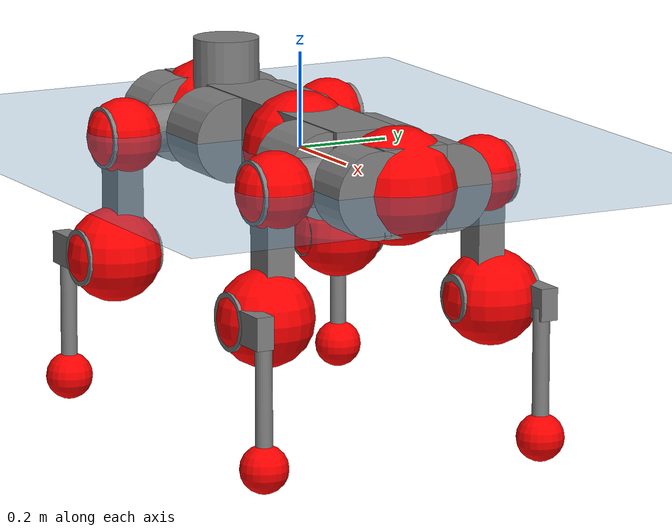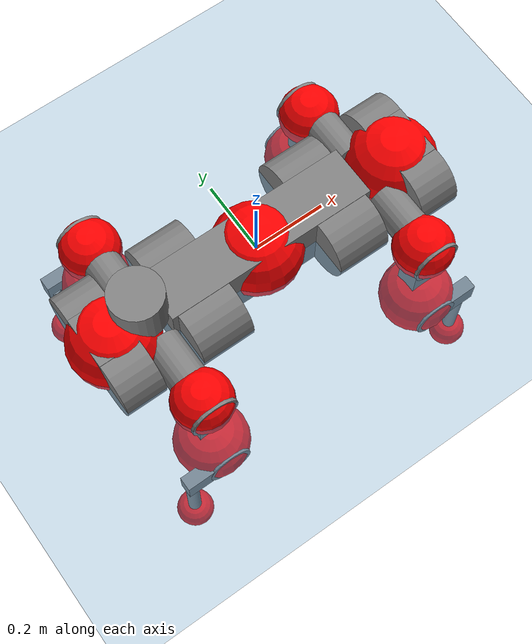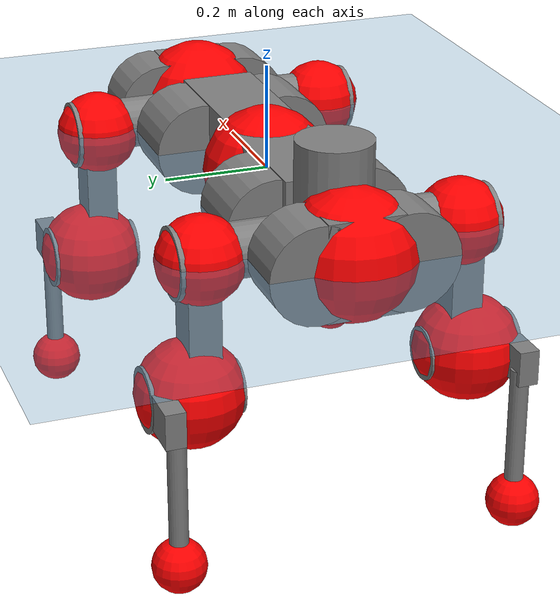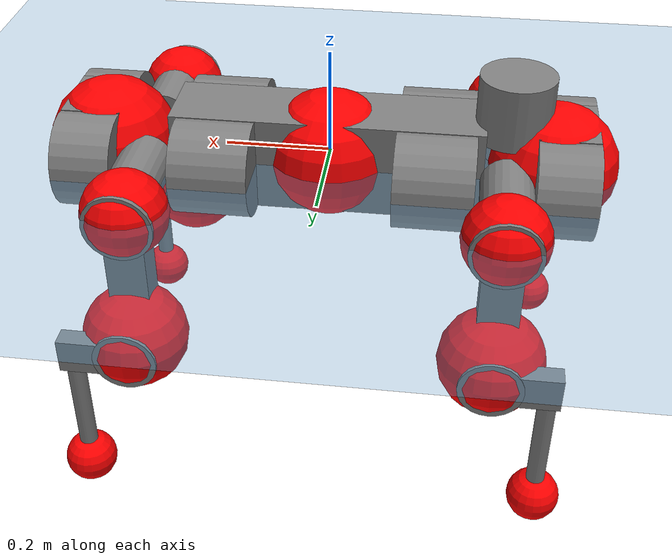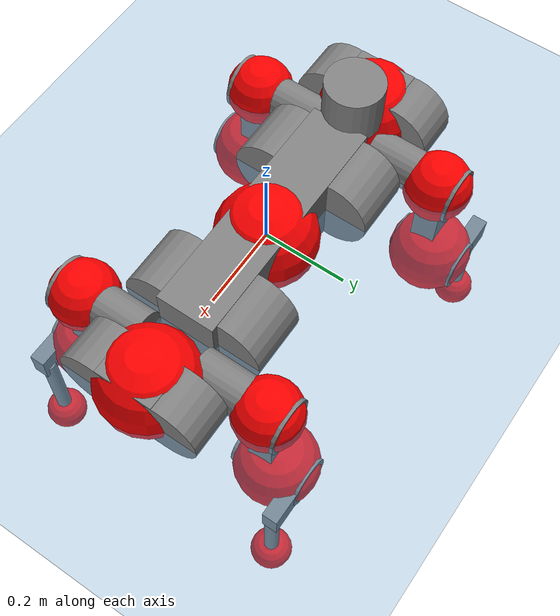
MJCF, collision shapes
<mujoco model="anymal_c">
  <compiler angle="radian" assetdir="assets" balanceinertia="true" inertiafromgeom="false"/>

  <option timestep="0.005" density="1.2" viscosity="2e-05"/>

  <size nkey="1"/>

  <visual>
    <quality shadowsize="8192"/>
    <map shadowclip="0.5"/>
  </visual>

  <default>
    <default class="/">
      <material specular="0" shininess="0.25"/>
      <geom contype="0" conaffinity="0" group="1" solref="-1000 -80"/>
      <site size="0.01 0.005 0.005" group="5"/>
      <general forcelimited="true" forcerange="-80 80" biastype="affine" gainprm="80" biasprm="0 -80 -2"/>
      <default class="anymal_c">
        <joint armature="0.01" damping="0.01" frictionloss="0.1"/>
        <default class="visual">
          <geom type="mesh" group="2"/>
          <default class="visual_zflip"/>
        </default>
        <default class="collision">
          <geom type="cylinder" group="3"/>
          <default class="foot">
            <geom size="0.03 0 0" type="sphere" condim="6" priority="1" friction="0.8 0.02 0.01" solimp="0.015 1 0.03"/>
          </default>
        </default>
      </default>
      <default class="reward_collision_sphere">
        <geom group="5" rgba="1 0 0 1"/>
      </default>
    </default>
  </default>

  <asset>
    <texture type="skybox" colorspace="auto" name="//unnamed_texture_0" builtin="gradient" rgb1="0.95 0.95 0.95" rgb2="0.95 0.95 0.95" width="100" height="600"/>
    <texture type="2d" colorspace="auto" name="texplane" builtin="checker" rgb1="0.345 0.575 0.748" rgb2="0.345 0.575 0.748" markrgb="1 1 1" width="512" height="512"/>
    <texture type="2d" colorspace="linear" name="base" file="base.png"/>
    <texture type="2d" colorspace="linear" name="top_shell" file="top_shell.png"/>
    <texture type="2d" colorspace="linear" name="bottom_shell" file="bottom_shell.png"/>
    <texture type="2d" colorspace="linear" name="remote" file="remote.png"/>
    <texture type="2d" colorspace="linear" name="hatch" file="hatch.png"/>
    <texture type="2d" colorspace="linear" name="handle" file="handle.png"/>
    <texture type="2d" colorspace="linear" name="face" file="face.png"/>
    <texture type="2d" colorspace="linear" name="battery" file="battery.png"/>
    <texture type="2d" colorspace="linear" name="lidar_cage" file="lidar_cage.png"/>
    <texture type="2d" colorspace="linear" name="depth_camera" file="depth_camera.png"/>
    <texture type="2d" colorspace="linear" name="wide_angle_camera" file="wide_angle_camera.png"/>
    <texture type="2d" colorspace="linear" name="lidar" file="lidar.png"/>
    <texture type="2d" colorspace="linear" name="drive" file="drive.png"/>
    <texture type="2d" colorspace="linear" name="hip_l" file="hip_l.png"/>
    <texture type="2d" colorspace="linear" name="shank_l" file="shank_l.png"/>
    <texture type="2d" colorspace="linear" name="foot" file="foot.png"/>
    <texture type="2d" colorspace="linear" name="thigh" file="thigh.png"/>
    <texture type="2d" colorspace="linear" name="shank_r" file="shank_r.png"/>
    <texture type="2d" colorspace="linear" name="hip_r" file="hip_r.png"/>
    <material name="MatPlane" class="/" texture="texplane" texuniform="true" texrepeat="2 2" specular="0.9" shininess="0.5"/>
    <material name="black_plastic" class="/" rgba="0.007 0.007 0.007 1"/>
    <material name="green" class="/" rgba="0.052 0.178 0.033 1"/>
    <material name="red" class="/" rgba="0.178 0.006 0.005 1"/>
    <material name="yellow" class="/" rgba="0.178 0.119 0.006 1"/>
    <material name="lwl" class="/" rgba="0.8 0.8 0.8 1"/>
    <material name="base" class="/" texture="base"/>
    <material name="top_shell" class="/" texture="top_shell"/>
    <material name="bottom_shell" class="/" texture="bottom_shell"/>
    <material name="hip_l" class="/" texture="hip_l"/>
    <material name="thigh" class="/" texture="thigh"/>
    <material name="shank_l" class="/" texture="shank_l"/>
    <material name="foot" class="/" texture="foot"/>
    <material name="hip_r" class="/" texture="hip_r"/>
    <material name="shank" class="/" texture="shank_r"/>
    <material name="hatch" class="/" texture="hatch"/>
    <material name="remote" class="/" texture="remote"/>
    <material name="handle" class="/" texture="handle"/>
    <material name="face" class="/" texture="face"/>
    <material name="depth_camera" class="/" texture="depth_camera"/>
    <material name="wide_angle_camera" class="/" texture="wide_angle_camera"/>
    <material name="battery" class="/" texture="battery"/>
    <material name="lidar_cage" class="/" texture="lidar_cage"/>
    <material name="lidar" class="/" texture="lidar"/>
    <material name="drive" class="/" texture="drive"/>
    <mesh name="base_0" class="/" file="base_0.obj"/>
    <mesh name="base_1" class="/" file="base_1.obj"/>
    <mesh name="base_2" class="/" file="base_2.obj"/>
    <mesh name="base_3" class="/" file="base_3.obj"/>
    <mesh name="base_4" class="/" file="base_4.obj"/>
    <mesh name="base_5" class="/" file="base_5.obj"/>
    <mesh name="top_shell" class="/" file="top_shell.obj"/>
    <mesh name="bottom_shell" class="/" file="bottom_shell.obj"/>
    <mesh name="remote" class="/" file="remote.obj"/>
    <mesh name="handle" class="/" file="handle.obj"/>
    <mesh name="face" class="/" file="face.obj"/>
    <mesh name="wide_angle_camera" class="/" file="wide_angle_camera.obj"/>
    <mesh name="depth_camera" class="/" file="depth_camera.obj"/>
    <mesh name="battery" class="/" file="battery.obj"/>
    <mesh name="lidar_cage" class="/" file="lidar_cage.obj"/>
    <mesh name="lidar" class="/" file="lidar.obj"/>
    <mesh name="drive" class="/" file="drive.obj"/>
    <mesh name="hip_l" class="/" file="hip_l.obj"/>
    <mesh name="thigh" class="/" file="thigh.obj"/>
    <mesh name="shank_l" class="/" file="shank_l.obj"/>
    <mesh name="foot" class="/" file="foot.obj"/>
    <mesh name="hip_r" class="/" file="hip_r.obj"/>
    <mesh name="hatch" class="/" file="hatch.obj"/>
    <mesh name="shank_r" class="/" file="shank_r.obj"/>
  </asset>

  <worldbody>
    <geom name="floor" class="/" size="100 100 0.125" type="plane" group="0" material="MatPlane"/>
    <light name="toplight_shadow" class="/" pos="0 0 5" dir="0.0990148 0.0990148 -0.990148" type="directional" ambient="0.04 0.04 0.04" diffuse="0.55 0.55 0.55" specular="0.12 0.12 0.12"/>
    <light name="toplight_fill" class="/" pos="0 0 5" dir="0.0990148 0.0990148 -0.990148" type="directional" castshadow="false" ambient="0.04 0.04 0.04" diffuse="0.3 0.3 0.3" specular="0.08 0.08 0.08"/>
    <body name="trunk" childclass="anymal_c" pos="0.000426631 0.000275138 -0.0023627" quat="1 -0.000126648 -8.57521e-05 5.22404e-05">
      <inertial pos="0.00148454 0.00457384 0.0420757" quat="0.498623 0.502439 0.500707 0.498219" mass="20.4244" diaginertia="0.513125 1.57546 0.126031"/>
      <joint name="//unnamed_joint_0" type="free" armature="0" damping="0" frictionloss="0"/>
      <geom name="//unnamed_geom_1" class="visual" material="green" mesh="base_0"/>
      <geom name="//unnamed_geom_2" class="visual" material="yellow" mesh="base_1"/>
      <geom name="//unnamed_geom_3" class="visual" material="red" mesh="base_2"/>
      <geom name="//unnamed_geom_4" class="visual" material="black_plastic" mesh="base_3"/>
      <geom name="//unnamed_geom_5" class="visual" material="lwl" mesh="base_4"/>
      <geom name="//unnamed_geom_6" class="visual" material="base" mesh="base_5"/>
      <geom name="trunk_1" class="collision" size="0.292194 0.0705296 0.0906809" type="box"/>
      <geom name="trunk_2" class="collision" size="0.0906809 0.0730485" pos="0.203556 0.083694 0" quat="0.707107 0 0.707107 0"/>
      <geom name="trunk_3" class="collision" size="0.0906809 0.0730485" pos="-0.203556 0.083694 0" quat="0.707107 0 0.707107 0"/>
      <geom name="trunk_4" class="collision" size="0.0906809 0.0730485" pos="0.203556 -0.083694 0" quat="0.707107 0 0.707107 0"/>
      <geom name="trunk_5" class="collision" size="0.0906809 0.0730485" pos="-0.203556 -0.083694 0" quat="0.707107 0 0.707107 0"/>
      <geom name="//unnamed_geom_12" class="visual" material="top_shell" mesh="top_shell"/>
      <geom name="//unnamed_geom_13" class="visual" material="bottom_shell" mesh="bottom_shell"/>
      <geom name="//unnamed_geom_14" class="visual" material="remote" mesh="remote"/>
      <geom name="//unnamed_geom_15" class="visual" material="handle" mesh="handle"/>
      <geom name="//unnamed_geom_16" class="visual" pos="0.387927 0 0" quat="1 0 0 0" material="face" mesh="face"/>
      <geom name="trunk_6" class="collision" size="0.0554161 0.0705296 0.0906809" pos="0.439401 0 0" type="box"/>
      <geom name="//unnamed_geom_18" class="collision" size="0.0906809 0.0554161" pos="0.439401 0.083694 0" quat="0.707107 0 0.707107 0"/>
      <geom name="//unnamed_geom_19" class="collision" size="0.0906809 0.0554161" pos="0.439401 -0.083694 0" quat="0.707107 0 0.707107 0"/>
      <geom name="//unnamed_geom_20" class="visual" pos="0.432052 0 -0.0256826" quat="0.965926 0 0.258819 0" material="depth_camera" mesh="depth_camera"/>
      <geom name="//unnamed_geom_21" class="visual" pos="0.480112 0 0.0133409" material="wide_angle_camera" mesh="wide_angle_camera"/>
      <geom name="//unnamed_geom_22" class="visual_zflip" pos="-0.387927 0 0" quat="0 0 0 1" material="face" mesh="face"/>
      <geom name="trunk_7" class="collision" size="0.0554161 0.0705296 0.0906809" pos="-0.439401 0 0" quat="0 0 0 1" type="box"/>
      <geom name="//unnamed_geom_24" class="collision" size="0.0906809 0.0554161" pos="-0.439401 -0.083694 0" quat="0 -0.707107 0 0.707107"/>
      <geom name="//unnamed_geom_25" class="collision" size="0.0906809 0.0554161" pos="-0.439401 0.083694 0" quat="0 -0.707107 0 0.707107"/>
      <geom name="//unnamed_geom_26" class="visual" pos="-0.432052 0 -0.0256826" quat="0 -0.258819 0 0.965926" material="depth_camera" mesh="depth_camera"/>
      <geom name="//unnamed_geom_27" class="visual_zflip" pos="-0.480112 0 0.0133409" quat="0 0 0 1" material="wide_angle_camera" mesh="wide_angle_camera"/>
      <geom name="//unnamed_geom_28" class="visual" material="battery" mesh="battery"/>
      <geom name="//unnamed_geom_29" class="visual" pos="0 0.0948242 0.0262285" quat="0.683013 -0.183013 0.183013 0.683013" material="depth_camera" mesh="depth_camera"/>
      <geom name="//unnamed_geom_30" class="visual" pos="0 -0.0948242 0.0262285" quat="0.683013 0.183013 0.183013 -0.683013" material="depth_camera" mesh="depth_camera"/>
      <geom name="//unnamed_geom_31" class="visual" pos="-0.340664 0 0.0655015" quat="1 0 0 0" material="lidar_cage" mesh="lidar_cage"/>
      <geom name="trunk_8" class="collision" size="0.0705296 0.0604539" pos="-0.340664 0 0.118972"/>
      <geom name="//unnamed_geom_33" class="visual" pos="-0.340664 0.000102044 0.126725" quat="0.707107 0 0 -0.707107" material="lidar" mesh="lidar"/>
      <geom name="//unnamed_geom_34" class="visual" pos="0.280674 0.124237 5.25182e-09" quat="0.258819 0.965926 0 0" material="drive" mesh="drive"/>
      <geom name="//unnamed_geom_35" class="visual" pos="0.280674 -0.124237 -5.25182e-09" quat="0.258819 -0.965926 0 0" material="drive" mesh="drive"/>
      <geom name="//unnamed_geom_36" class="visual" pos="-0.280674 0.124237 -5.25182e-09" quat="0 0 0.965926 -0.258819" material="drive" mesh="drive"/>
      <geom name="//unnamed_geom_37" class="visual" pos="-0.280674 -0.124237 5.25182e-09" quat="0 0 -0.965926 -0.258819" material="drive" mesh="drive"/>
      <geom name="//unnamed_geom_38" class="visual" pos="0.108563 0 0.0650559" quat="1 0 0 0" material="hatch" mesh="hatch"/>
      <geom name="//unnamed_geom_39" class="reward_collision_sphere" size="0.120908"/>
      <geom name="//unnamed_geom_40" class="reward_collision_sphere" size="0.120908" pos="0.421151 0 0"/>
      <geom name="//unnamed_geom_41" class="reward_collision_sphere" size="0.120908" pos="-0.421151 0 0"/>
      <site name="imu" pos="0.22435 0.0145342 0.0456922" size="0.0100757"/>
      <camera name="track" pos="0 -2.39126 0" quat="0.707107 0.707107 0 0" mode="trackcom"/>
      <camera name="ego_camera" pos="0.421151 0 -0.0356471" quat="-0.5 -0.5 0.5 0.5"/>
      <body name="LF_HIP" pos="0.283109 0.123552 -0.000732582" quat="0.259024 0.965871 -0.000548376 -0.000114076">
        <inertial pos="0.0529677 -0.0161732 -0.00795474" quat="-0.146131 0.717191 -0.115865 0.67146" mass="2.93146" diaginertia="0.00427707 0.0121622 0.00189127"/>
        <joint name="LF_HAA" pos="0 0 0" axis="0.999917 0.011915 -0.00496992" range="-0.739375 0.437201" armature="0.00990622" damping="0.0131163" frictionloss="0.104302"/>
        <geom name="//unnamed_geom_42" class="visual" pos="0 0.000308941 -5.07433e-05" quat="0.258819 -0.965926 0 0" material="hip_l" mesh="hip_l"/>
        <geom name="//unnamed_geom_43" class="visual" pos="0.0560599 -0.0712401 -0.0388786" quat="0.183013 -0.683013 0.683013 0.183013" material="drive" mesh="drive"/>
        <geom name="//unnamed_geom_44" class="collision" size="0.0503783 0.0705296" pos="0.0560599 -0.0142995 -0.00615358" quat="-0.353553 -0.612372 0.612372 -0.353553"/>
        <body name="LF_THIGH" pos="0.0542096 -0.0860242 -0.0340197" quat="0.181008 -0.682611 0.683617 0.184245">
          <inertial pos="0.0296195 -0.00493474 -0.221304" quat="0.993198 -0.0145864 -0.0796947 0.0836255" mass="3.14938" diaginertia="0.0222884 0.0683548 0.00231851"/>
          <joint name="LF_HFE" pos="0 0 0" axis="0.999997 -0.00191536 0.0012069" stiffness="0.00624682" range="-3.13246 3.21251" armature="0.00780775" damping="0.0226167" frictionloss="0.0970727"/>
          <geom name="//unnamed_geom_45" class="visual" pos="-0.00516776 -8.14318e-06 0" quat="0.707107 0 0 -0.707107" material="thigh" mesh="thigh"/>
          <geom name="//unnamed_geom_46" class="collision" size="0.0654918 0.0403026" pos="0.0374356 0 0" quat="0.5 0.5 -0.5 -0.5"/>
          <geom name="//unnamed_geom_47" class="collision" size="0.0377837 0.030227 0.142383" pos="0.0280767 0 -0.125936" quat="0.707107 0 0 -0.707107" type="box"/>
          <geom name="//unnamed_geom_48" class="visual" pos="0.0938699 0 -0.253986" quat="1 0 0 0" material="drive" mesh="drive"/>
          <geom name="//unnamed_geom_49" class="collision" size="0.0503783 0.0705296" pos="0.0283575 0 -0.253986" quat="0.707107 0 0.707107 0"/>
          <geom name="//unnamed_geom_50" class="reward_collision_sphere" size="0.0806053" pos="0.0233973 0 0"/>
          <body name="LF_SHANK" pos="0.0956837 0.0010614 -0.258284" quat="1 0.000368795 -0.000405553 -0.000735163">
            <inertial pos="0.00805236 -0.0733213 -0.0701162" quat="0.991633 -0.126384 0.000414948 -0.0262982" mass="0.617857" diaginertia="0.00729459 0.0215317 0.00061511"/>
            <joint name="LF_KFE" pos="0 0 0" axis="0.99999 -0.00391844 0.0019976" range="-3.24054 3.10739" armature="0.00964625" damping="0.0187971" frictionloss="0.112251"/>
            <geom name="//unnamed_geom_51" class="visual" pos="-0.00168509 -0.00898501 0" quat="0.707107 0 0 -0.707107" material="shank_l" mesh="shank_l"/>
            <geom name="LF_kfe_act" class="collision" size="0.0604539 0.0201513" pos="0.0187178 0 0" quat="0.5 0.5 -0.5 -0.5"/>
            <geom name="//unnamed_geom_53" class="collision" size="0.057934 0.0340053 0.0191437" pos="0.0187178 -0.0687475 0" quat="0.5 0.5 -0.5 -0.5" type="box"/>
            <geom name="//unnamed_geom_54" class="visual" pos="0.0122138 -0.108051 -0.301191" quat="0.382683 0 0 -0.92388" material="foot" mesh="foot"/>
            <geom name="LF_calf" class="collision" size="0.0176324 0.142321" pos="0.0122134 -0.105156 -0.150596" quat="0.707107 0 0 -0.707107"/>
            <geom name="LF_foot" class="foot" size="0.0311053" pos="0.0122134 -0.105156 -0.28114" quat="0.707107 0 0 -0.707107"/>
            <geom name="//unnamed_geom_57" class="reward_collision_sphere" size="0.100757" pos="-0.0467945 0 0"/>
            <geom name="//unnamed_geom_58" class="reward_collision_sphere" size="0.0503783" pos="0.0122134 -0.105156 -0.28114"/>
            <site name="LF_foot" class="foot" pos="0.0122134 -0.105156 -0.28114" quat="0.707107 0 0 -0.707107" size="0.0100757"/>
          </body>
        </body>
      </body>
      <body name="RF_HIP" pos="0.285562 -0.125508 0.00848876" quat="0.259345 -0.965784 -0.000613266 -0.000924911">
        <inertial pos="0.0510718 0.0206164 -0.00892093" quat="0.131024 0.684344 0.140894 0.703317" mass="2.7613" diaginertia="0.00422598 0.0119999 0.00189271"/>
        <joint name="RF_HAA" pos="0 0 0" axis="0.99999 3.054e-05 -0.00439827" stiffness="0.0260727" range="-0.465044 0.670891" armature="0.00929681" damping="0.0191462" frictionloss="0.113129"/>
        <geom name="//unnamed_geom_59" class="visual" pos="0 -0.000308938 -5.07431e-05" quat="0.258819 0.965926 0 0" material="hip_r" mesh="hip_r"/>
        <geom name="//unnamed_geom_60" class="visual" pos="0.0560599 0.0712401 -0.0388786" quat="0.183013 0.683013 0.683013 -0.183013" material="drive" mesh="drive"/>
        <geom name="//unnamed_geom_61" class="collision" size="0.0503783 0.0705296" pos="0.0560599 0.0142995 -0.00615358" quat="-0.353553 0.612372 0.612372 0.353553"/>
        <body name="RF_THIGH" pos="0.0543686 0.0812049 -0.0338512" quat="0.182946 0.682688 0.683297 -0.18323">
          <inertial pos="0.0300521 1.2661e-05 -0.222527" quat="0.993039 -0.0118391 -0.0844883 0.0812047" mass="3.25254" diaginertia="0.0219062 0.0734923 0.0023669"/>
          <joint name="RF_HFE" pos="0 0 0" axis="0.999938 -0.00478885 -0.0100377" range="-3.14311 3.18305" armature="0.0114873" damping="0" frictionloss="0.0998152"/>
          <geom name="//unnamed_geom_62" class="visual" pos="-0.00516776 -8.14318e-06 0" quat="0.707107 0 0 -0.707107" material="thigh" mesh="thigh"/>
          <geom name="//unnamed_geom_63" class="collision" size="0.0654918 0.0403026" pos="0.0374356 0 0" quat="0.5 0.5 0.5 0.5"/>
          <geom name="//unnamed_geom_64" class="collision" size="0.0377837 0.030227 0.142383" pos="0.0280767 0 -0.125936" quat="0.707107 0 0 0.707107" type="box"/>
          <geom name="//unnamed_geom_65" class="visual" pos="0.0938699 0 -0.253986" quat="1 0 0 0" material="drive" mesh="drive"/>
          <geom name="//unnamed_geom_66" class="collision" size="0.0503783 0.0705296" pos="0.0283575 0 -0.253986" quat="0.707107 0 0.707107 0"/>
          <geom name="//unnamed_geom_67" class="reward_collision_sphere" size="0.0806053" pos="0.0233973 0 0"/>
          <body name="RF_SHANK" pos="0.0898474 -0.00112211 -0.257632" quat="0.999999 0.00111663 0.000407118 0.00031153">
            <inertial pos="0.00498722 0.0730715 -0.0709565" quat="0.992917 0.115695 0.00779126 0.0258797" mass="0.563615" diaginertia="0.00668511 0.021023 0.00058845"/>
            <joint name="RF_KFE" pos="0 0 0" axis="0.999987 0.00273472 0.00421369" range="-3.08983 3.18664" armature="0.00903496" damping="0.0269515" frictionloss="0.0901994"/>
            <geom name="//unnamed_geom_68" class="visual" pos="-0.00168508 0.00898499 0" quat="0.707107 0 0 0.707107" material="shank" mesh="shank_r"/>
            <geom name="RF_kfe_act" class="collision" size="0.0604539 0.0201513" pos="0.0187178 0 0" quat="0.5 0.5 0.5 0.5"/>
            <geom name="//unnamed_geom_70" class="collision" size="0.057934 0.0340053 0.0191437" pos="0.0187178 0.0687475 0" quat="0.5 0.5 0.5 0.5" type="box"/>
            <geom name="//unnamed_geom_71" class="visual" pos="0.012213 0.108051 -0.301191" quat="0.382683 0 0 0.92388" material="foot" mesh="foot"/>
            <geom name="RF_calf" class="collision" size="0.0176324 0.142321" pos="0.0122134 0.105156 -0.150596" quat="0.707107 0 0 0.707107"/>
            <geom name="RF_foot" class="foot" size="0.0359299" pos="0.0122134 0.105156 -0.28114" quat="0.707107 0 0 0.707107"/>
            <geom name="//unnamed_geom_74" class="reward_collision_sphere" size="0.100757" pos="-0.0467945 0 0"/>
            <geom name="//unnamed_geom_75" class="reward_collision_sphere" size="0.0503783" pos="0.0122134 0.105156 -0.28114"/>
            <site name="RF_foot" class="foot" pos="0.0122134 0.105156 -0.28114" quat="0.707107 0 0 0.707107" size="0.0100757"/>
          </body>
        </body>
      </body>
      <body name="LH_HIP" pos="-0.280256 0.125849 -0.000325648" quat="-0.000396485 8.71848e-05 0.965708 -0.25963">
        <inertial pos="0.0556296 0.015416 -0.00718629" quat="0.126867 0.67298 0.129267 0.717142" mass="2.95385" diaginertia="0.00397701 0.0115477 0.00181892"/>
        <joint name="LH_HAA" pos="0 0 0" axis="0.999968 0.00799951 0.000486836" range="-0.537316 0.678838" armature="0.00881279" damping="0.00525824" frictionloss="0.0939374"/>
        <geom name="//unnamed_geom_76" class="visual" pos="0 -0.000308938 -5.07431e-05" quat="-0.258819 -0.965926 0 0" material="hip_r" mesh="hip_r"/>
        <geom name="//unnamed_geom_77" class="visual" pos="0.0560599 0.0712401 -0.0388786" quat="0.183013 0.683013 0.683013 -0.183013" material="drive" mesh="drive"/>
        <geom name="//unnamed_geom_78" class="collision" size="0.0503783 0.0705296" pos="0.0560599 0.0142995 -0.00615358" quat="-0.353553 0.612372 0.612372 0.353553"/>
        <body name="LH_THIGH" pos="0.0554657 0.085011 -0.0373875" quat="0.183743 0.683544 0.682711 -0.181414">
          <inertial pos="0.0293421 -0.00561932 -0.216594" quat="0.992288 -0.00109427 -0.0856588 0.0895905" mass="3.31048" diaginertia="0.0214581 0.0734896 0.00226225"/>
          <joint name="LH_HFE" pos="0 0 0" axis="0.999662 0.018073 -0.0186924" range="-3.18542 3.12777" armature="0.010026" damping="0.000324341" frictionloss="0.0972005"/>
          <geom name="//unnamed_geom_79" class="visual" pos="-0.00516776 -8.14318e-06 0" quat="0.707107 0 0 -0.707107" material="thigh" mesh="thigh"/>
          <geom name="//unnamed_geom_80" class="collision" size="0.0654918 0.0403026" pos="0.0374356 0 0" quat="0.5 0.5 -0.5 -0.5"/>
          <geom name="//unnamed_geom_81" class="collision" size="0.0377837 0.030227 0.142383" pos="0.0280767 0 -0.125936" quat="0.707107 0 0 -0.707107" type="box"/>
          <geom name="//unnamed_geom_82" class="visual" pos="0.0938699 0 -0.253986" quat="1 0 0 0" material="drive" mesh="drive"/>
          <geom name="//unnamed_geom_83" class="collision" size="0.0503783 0.0705296" pos="0.0283575 0 -0.253986" quat="0.707107 0 0.707107 0"/>
          <geom name="//unnamed_geom_84" class="reward_collision_sphere" size="0.0806053" pos="0.0233973 0 0"/>
          <body name="LH_SHANK" pos="0.092673 -0.00365154 -0.254063" quat="1 5.68286e-05 0.000272802 0.000378149">
            <inertial pos="0.00443837 0.0711373 -0.073485" quat="0.993338 0.113201 -0.00334481 0.0212918" mass="0.600771" diaginertia="0.00757993 0.0235031 0.000659172"/>
            <joint name="LH_KFE" pos="0 0 0" axis="0.999996 0.00101242 -0.00259836" range="-3.23255 3.12286" armature="0.00754068" damping="0.00327446" frictionloss="0.100847"/>
            <geom name="//unnamed_geom_85" class="visual" pos="-0.00168508 0.00898499 0" quat="-0.707107 0 0 -0.707107" material="shank" mesh="shank_r"/>
            <geom name="LH_kfe_act" class="collision" size="0.0604539 0.0201513" pos="0.0187178 0 0" quat="0.5 0.5 -0.5 -0.5"/>
            <geom name="//unnamed_geom_87" class="collision" size="0.057934 0.0340053 0.0191437" pos="0.0187178 0.0687475 0" quat="0.5 0.5 -0.5 -0.5" type="box"/>
            <geom name="//unnamed_geom_88" class="visual" pos="0.012213 0.108051 -0.301191" quat="-0.382683 0 0 -0.92388" material="foot" mesh="foot"/>
            <geom name="LH_calf" class="collision" size="0.0176324 0.142321" pos="0.0122134 0.105156 -0.150596" quat="0.707107 0 0 -0.707107"/>
            <geom name="LH_foot" class="foot" size="0.0340407" pos="0.0122134 0.105156 -0.28114" quat="0.707107 0 0 -0.707107"/>
            <geom name="//unnamed_geom_91" class="reward_collision_sphere" size="0.100757" pos="-0.0467945 0 0"/>
            <geom name="//unnamed_geom_92" class="reward_collision_sphere" size="0.0503783" pos="0.0122134 0.105156 -0.28114"/>
            <site name="LH_foot" class="foot" pos="0.0122134 0.105156 -0.28114" quat="0.707107 0 0 -0.707107" size="0.0100757"/>
          </body>
        </body>
      </body>
      <body name="RH_HIP" pos="-0.276004 -0.125623 0.000320266" quat="0.00225357 0.00133135 -0.965734 -0.25952">
        <inertial pos="0.0539049 -0.0207207 -0.00999358" quat="-0.130114 0.71126 -0.135544 0.677353" mass="2.80145" diaginertia="0.00416313 0.0121898 0.00169428"/>
        <joint name="RH_HAA" pos="0 0 0" axis="0.999957 -0.00194751 -0.00903944" range="-0.775055 0.482564" armature="0.00828338" damping="0.00560016" frictionloss="0.102059"/>
        <geom name="//unnamed_geom_93" class="visual" pos="0 0.000308941 -5.07433e-05" quat="-0.258819 0.965926 0 0" material="hip_l" mesh="hip_l"/>
        <geom name="//unnamed_geom_94" class="visual" pos="0.0560599 -0.0712401 -0.0388786" quat="-0.183013 0.683013 -0.683013 -0.183013" material="drive" mesh="drive"/>
        <geom name="//unnamed_geom_95" class="collision" size="0.0503783 0.0705296" pos="0.0560599 -0.0142995 -0.00615358" quat="0.353553 0.612372 -0.612372 0.353553"/>
        <body name="RH_THIGH" pos="0.0564331 -0.0884914 -0.038994" quat="-0.183576 0.68238 -0.683466 -0.183116">
          <inertial pos="0.0282279 0.00117039 -0.219885" quat="0.992119 -0.00945669 -0.0909477 0.0856622" mass="3.33706" diaginertia="0.0218966 0.0730721 0.00243098"/>
          <joint name="RH_HFE" pos="0 0 0" axis="0.999994 -0.00349835 -0.000437249" range="-3.11919 3.03713" armature="0.0124166" damping="0" frictionloss="0.0947105"/>
          <geom name="//unnamed_geom_96" class="visual" pos="-0.00516776 -8.14318e-06 0" quat="0.707107 0 0 -0.707107" material="thigh" mesh="thigh"/>
          <geom name="//unnamed_geom_97" class="collision" size="0.0654918 0.0403026" pos="0.0374356 0 0" quat="0.5 0.5 0.5 0.5"/>
          <geom name="//unnamed_geom_98" class="collision" size="0.0377837 0.030227 0.142383" pos="0.0280767 0 -0.125936" quat="0.707107 0 0 0.707107" type="box"/>
          <geom name="//unnamed_geom_99" class="visual" pos="0.0938699 0 -0.253986" quat="1 0 0 0" material="drive" mesh="drive"/>
          <geom name="//unnamed_geom_100" class="collision" size="0.0503783 0.0705296" pos="0.0283575 0 -0.253986" quat="0.707107 0 0.707107 0"/>
          <geom name="//unnamed_geom_101" class="reward_collision_sphere" size="0.0806053" pos="0.0233973 0 0"/>
          <body name="RH_SHANK" pos="0.0945623 -0.000291331 -0.253001" quat="1 -0.00010114 0.000399108 -0.000405872">
            <inertial pos="0.00452379 -0.0704908 -0.0709653" quat="0.992905 -0.115991 -0.00116189 -0.0261478" mass="0.597732" diaginertia="0.00749334 0.0228504 0.000614096"/>
            <joint name="RH_KFE" pos="0 0 0" axis="0.99998 0.00621455 0.00115541" stiffness="0.0095384" range="-3.19707 3.16253" armature="0.00936216" damping="0" frictionloss="0.104766"/>
            <geom name="//unnamed_geom_102" class="visual" pos="-0.00168509 -0.00898501 0" quat="0.707107 0 0 -0.707107" material="shank_l" mesh="shank_l"/>
            <geom name="RH_kfe_act" class="collision" size="0.0604539 0.0201513" pos="0.0187178 0 0" quat="0.5 0.5 0.5 0.5"/>
            <geom name="//unnamed_geom_104" class="collision" size="0.057934 0.0340053 0.0191437" pos="0.0187178 -0.0687475 0" quat="0.5 0.5 0.5 0.5" type="box"/>
            <geom name="//unnamed_geom_105" class="visual" pos="0.0122138 -0.108051 -0.301191" quat="0.382683 0 0 -0.92388" material="foot" mesh="foot"/>
            <geom name="RH_calf" class="collision" size="0.0176324 0.142321" pos="0.0122134 -0.105156 -0.150596" quat="0.707107 0 0 0.707107"/>
            <geom name="RH_foot" class="foot" size="0.023976" pos="0.0122134 -0.105156 -0.28114" quat="0.707107 0 0 0.707107"/>
            <geom name="//unnamed_geom_108" class="reward_collision_sphere" size="0.100757" pos="-0.0467945 0 0"/>
            <geom name="//unnamed_geom_109" class="reward_collision_sphere" size="0.0503783" pos="0.0122134 -0.105156 -0.28114"/>
            <site name="RH_foot" class="foot" pos="0.0122134 -0.105156 -0.28114" quat="0.707107 0 0 0.707107" size="0.0100757"/>
          </body>
        </body>
      </body>
    </body>
  </worldbody>

  <contact>
    <pair class="/" geom1="floor" geom2="LF_foot" name="//unnamed_contact_0"/>
    <pair class="/" geom1="floor" geom2="RF_foot" name="//unnamed_contact_1"/>
    <pair class="/" geom1="floor" geom2="LH_foot" name="//unnamed_contact_2"/>
    <pair class="/" geom1="floor" geom2="RH_foot" name="//unnamed_contact_3"/>
  </contact>

  <actuator>
    <general name="LF_HAA" class="/" joint="LF_HAA" forcerange="-85.3318 85.3318" gainprm="81.7658" biasprm="0 -81.7658 -2.29989"/>
    <general name="LF_HFE" class="/" joint="LF_HFE" forcerange="-80.7603 80.7603" gainprm="81.7658" biasprm="0 -81.7658 -2.29989"/>
    <general name="LF_KFE" class="/" joint="LF_KFE" forcerange="-85.1362 85.1362" gainprm="81.7658" biasprm="0 -81.7658 -2.29989"/>
    <general name="RF_HAA" class="/" joint="RF_HAA" forcerange="-77.2052 77.2052" gainprm="81.7658" biasprm="0 -81.7658 -2.29989"/>
    <general name="RF_HFE" class="/" joint="RF_HFE" forcerange="-84.491 84.491" gainprm="81.7658" biasprm="0 -81.7658 -2.29989"/>
    <general name="RF_KFE" class="/" joint="RF_KFE" forcerange="-83.6441 83.6441" gainprm="81.7658" biasprm="0 -81.7658 -2.29989"/>
    <general name="LH_HAA" class="/" joint="LH_HAA" forcerange="-74.4509 74.4509" gainprm="81.7658" biasprm="0 -81.7658 -2.29989"/>
    <general name="LH_HFE" class="/" joint="LH_HFE" forcerange="-82.5795 82.5795" gainprm="81.7658" biasprm="0 -81.7658 -2.29989"/>
    <general name="LH_KFE" class="/" joint="LH_KFE" forcerange="-89.3176 89.3176" gainprm="81.7658" biasprm="0 -81.7658 -2.29989"/>
    <general name="RH_HAA" class="/" joint="RH_HAA" forcerange="-76.8464 76.8464" gainprm="81.7658" biasprm="0 -81.7658 -2.29989"/>
    <general name="RH_HFE" class="/" joint="RH_HFE" forcerange="-87.4007 87.4007" gainprm="81.7658" biasprm="0 -81.7658 -2.29989"/>
    <general name="RH_KFE" class="/" joint="RH_KFE" forcerange="-71.2703 71.2703" gainprm="81.7658" biasprm="0 -81.7658 -2.29989"/>
  </actuator>

  <sensor>
    <gyro site="imu" name="imu_angular_velocity"/>
    <velocimeter site="imu" name="imu_linear_velocity"/>
    <framelinvel objtype="site" objname="LF_foot" name="LF_foot_global_linear_velocity"/>
    <framelinvel objtype="site" objname="RF_foot" name="RF_foot_global_linear_velocity"/>
    <framelinvel objtype="site" objname="LH_foot" name="LH_foot_global_linear_velocity"/>
    <framelinvel objtype="site" objname="RH_foot" name="RH_foot_global_linear_velocity"/>
  </sensor>

  <keyframe>
    <key name="home" qpos="0 0 0.55 1 0 0 0 0 0.4 -0.8 0 -0.4 0.8 0 -0.4 0.8 0 0.4 -0.8"/>
  </keyframe>
</mujoco>
